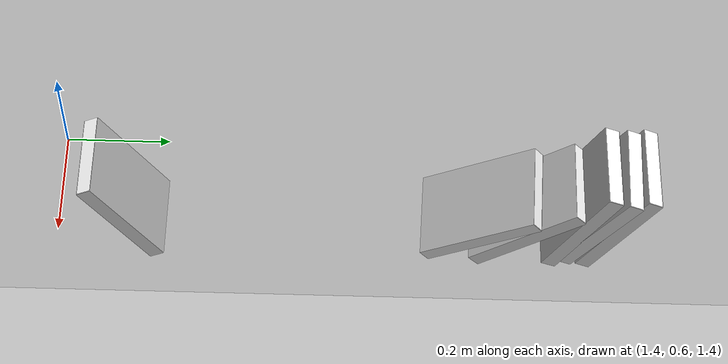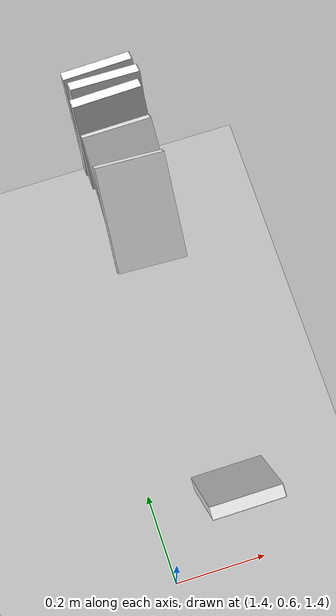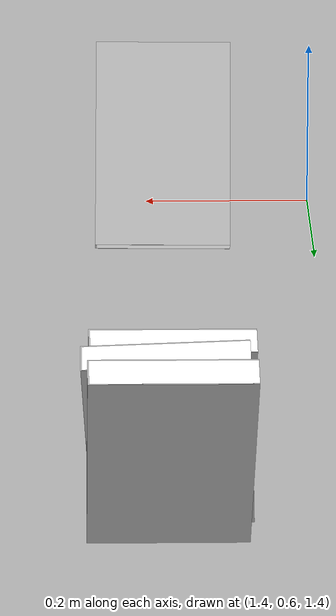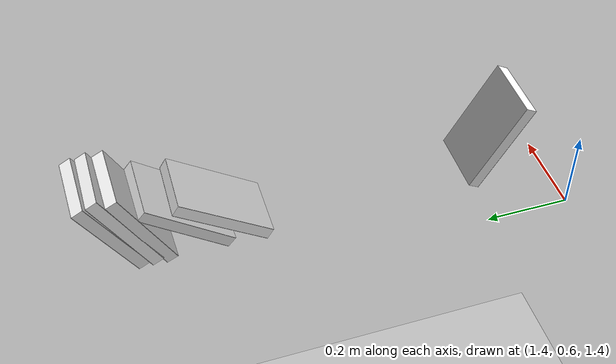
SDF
<sdf version="1.7">
 <world name="default">
  <model name="ground_plane">
   <static>1</static>
   <link name="link">
    <collision name="collision">
     <geometry><plane><normal>0 0 1</normal><size>100 100</size></plane></geometry>
     <surface><friction><ode><mu>1</mu><mu2>1</mu2></ode></friction></surface>
    </collision>
    <visual name="visual">
     <cast_shadows>0</cast_shadows>
     <geometry><plane><normal>0 0 1</normal><size>100 100</size></plane></geometry>
     <material>
      <script><uri>file://media/materials/scripts/gazebo.material</uri><name>Gazebo/Grey</name></script>
     </material>
    </visual>
    <velocity_decay><linear>0</linear><angular>0</angular></velocity_decay>
   </link>
  </model>
  <model name="book_1">
   <link name="cover">
    <pose>0 -0.000108 0.015405 0 -0 0</pose>
    <visual name="visual">
     <geometry><box><size>0.245 0.16 0.03</size></box></geometry>
     <material>
      <script>
       <uri>model://book_1/materials/scripts</uri>
       <uri>model://book_1/materials/textures</uri>
       <name>book_1</name>
      </script>
     </material>
    </visual>
    <collision name="collision"><geometry><box><size>0.245 0.16 0.03</size></box></geometry></collision>
   </link>
   <link name="page">
    <pose>0 0.000608 0.015405 0 -0 0</pose>
    <visual name="visual">
     <geometry><box><size>0.24502 0.15862 0.028</size></box></geometry>
     <material>
      <lighting>1</lighting>
      <ambient>1 1 1 1</ambient>
      <diffuse>1 1 1 1</diffuse>
      <specular>0.01 0.01 0.01 1</specular>
      <emissive>0 0 0 1</emissive>
      <shader type="vertex"><normal_map>__default__</normal_map></shader>
     </material>
    </visual>
    <collision name="collision"><geometry><box><size>0.245 0.16 0.03</size></box></geometry></collision>
   </link>
   <static>1</static>
   <pose>1.57892 1.63737 1.52769 -3.11882 1.07703 -1.53154</pose>
  </model>
  <model name="book_11">
   <link name="cover">
    <pose>0 -0.000108 0.015405 0 -0 0</pose>
    <visual name="visual">
     <geometry><box><size>0.245 0.16 0.03</size></box></geometry>
     <material>
      <script>
       <uri>model://book_11/materials/scripts</uri>
       <uri>model://book_11/materials/textures</uri>
       <name>book_11</name>
      </script>
     </material>
    </visual>
    <collision name="collision"><geometry><box><size>0.245 0.16 0.03</size></box></geometry></collision>
   </link>
   <link name="page">
    <pose>0 0.000608 0.015405 0 -0 0</pose>
    <visual name="visual">
     <geometry><box><size>0.24502 0.15862 0.028</size></box></geometry>
     <material>
      <lighting>1</lighting>
      <ambient>1 1 1 1</ambient>
      <diffuse>1 1 1 1</diffuse>
      <specular>0.01 0.01 0.01 1</specular>
      <emissive>0 0 0 1</emissive>
      <shader type="vertex"><normal_map>__default__</normal_map></shader>
     </material>
    </visual>
    <collision name="collision"><geometry><box><size>0.245 0.16 0.03</size></box></geometry></collision>
   </link>
   <static>1</static>
   <pose>1.57867 1.56994 1.52807 -3.11726 1.11114 -1.52978</pose>
  </model>
  <model name="book_12">
   <link name="cover">
    <pose>0 -0.000108 0.015405 0 -0 0</pose>
    <visual name="visual">
     <geometry><box><size>0.245 0.16 0.03</size></box></geometry>
     <material>
      <script>
       <uri>model://book_12/materials/scripts</uri>
       <uri>model://book_12/materials/textures</uri>
       <name>book_12</name>
      </script>
     </material>
    </visual>
    <collision name="collision"><geometry><box><size>0.245 0.16 0.03</size></box></geometry></collision>
   </link>
   <link name="page">
    <pose>0 0.000608 0.015405 0 -0 0</pose>
    <visual name="visual">
     <geometry><box><size>0.24502 0.15862 0.028</size></box></geometry>
     <material>
      <lighting>1</lighting>
      <ambient>1 1 1 1</ambient>
      <diffuse>1 1 1 1</diffuse>
      <specular>0.01 0.01 0.01 1</specular>
      <emissive>0 0 0 1</emissive>
      <shader type="vertex"><normal_map>__default__</normal_map></shader>
     </material>
    </visual>
    <collision name="collision"><geometry><box><size>0.245 0.16 0.03</size></box></geometry></collision>
   </link>
   <static>1</static>
   <pose>1.5784 1.39365 1.50223 3.07983 0.578016 -1.63068</pose>
  </model>
  <model name="book_17">
   <link name="cover">
    <pose>0 -0.000108 0.015405 0 -0 0</pose>
    <visual name="visual">
     <geometry><box><size>0.245 0.16 0.03</size></box></geometry>
     <material>
      <script>
       <uri>model://book_17/materials/scripts</uri>
       <uri>model://book_17/materials/textures</uri>
       <name>book_17</name>
      </script>
     </material>
    </visual>
    <collision name="collision"><geometry><box><size>0.245 0.16 0.03</size></box></geometry></collision>
   </link>
   <link name="page">
    <pose>0 0.000608 0.015405 0 -0 0</pose>
    <visual name="visual">
     <geometry><box><size>0.24502 0.15862 0.028</size></box></geometry>
     <material>
      <lighting>1</lighting>
      <ambient>1 1 1 1</ambient>
      <diffuse>1 1 1 1</diffuse>
      <specular>0.01 0.01 0.01 1</specular>
      <emissive>0 0 0 1</emissive>
      <shader type="vertex"><normal_map>__default__</normal_map></shader>
     </material>
    </visual>
    <collision name="collision"><geometry><box><size>0.245 0.16 0.03</size></box></geometry></collision>
   </link>
   <static>1</static>
   <pose>1.58009 1.60475 1.53124 3.06968 1.07706 -1.63479</pose>
  </model>
  <model name="book_18">
   <link name="cover">
    <pose>0 -0.000108 0.015405 0 -0 0</pose>
    <visual name="visual">
     <geometry><box><size>0.245 0.16 0.03</size></box></geometry>
     <material>
      <script>
       <uri>model://book_18/materials/scripts</uri>
       <uri>model://book_18/materials/textures</uri>
       <name>book_18</name>
      </script>
     </material>
    </visual>
    <collision name="collision"><geometry><box><size>0.245 0.16 0.03</size></box></geometry></collision>
   </link>
   <link name="page">
    <pose>0 0.000608 0.015405 0 -0 0</pose>
    <visual name="visual">
     <geometry><box><size>0.24502 0.15862 0.028</size></box></geometry>
     <material>
      <lighting>1</lighting>
      <ambient>1 1 1 1</ambient>
      <diffuse>1 1 1 1</diffuse>
      <specular>0.01 0.01 0.01 1</specular>
      <emissive>0 0 0 1</emissive>
      <shader type="vertex"><normal_map>__default__</normal_map></shader>
     </material>
    </visual>
    <collision name="collision"><geometry><box><size>0.245 0.16 0.03</size></box></geometry></collision>
   </link>
   <static>1</static>
   <pose>1.5794 0.721517 1.51174 -0.022284 1.06499 1.55051</pose>
  </model>
  <model name="book_2">
   <link name="cover">
    <pose>0 -0.000108 0.015405 0 -0 0</pose>
    <visual name="visual">
     <geometry><box><size>0.245 0.16 0.03</size></box></geometry>
     <material>
      <script>
       <uri>model://book_2/materials/scripts</uri>
       <uri>model://book_2/materials/textures</uri>
       <name>book_2</name>
      </script>
     </material>
    </visual>
    <collision name="collision"><geometry><box><size>0.245 0.16 0.03</size></box></geometry></collision>
   </link>
   <link name="page">
    <pose>0 0.000608 0.015405 0 -0 0</pose>
    <visual name="visual">
     <geometry><box><size>0.24502 0.15862 0.028</size></box></geometry>
     <material>
      <lighting>1</lighting>
      <ambient>1 1 1 1</ambient>
      <diffuse>1 1 1 1</diffuse>
      <specular>0.01 0.01 0.01 1</specular>
      <emissive>0 0 0 1</emissive>
      <shader type="vertex"><normal_map>__default__</normal_map></shader>
     </material>
    </visual>
    <collision name="collision"><geometry><box><size>0.245 0.16 0.03</size></box></geometry></collision>
   </link>
   <static>1</static>
   <pose>1.58038 1.4756 1.50855 -3.12301 0.677539 -1.55887</pose>
  </model>
  <model name="Floor_room">
   <link name="main">
    <pose>0 0 0.01 0 -0 0</pose>
    <collision name="main_Collision"><geometry><box><size>20 20 0.001</size></box></geometry></collision>
    <visual name="main_Visual">
     <geometry><box><size>20 20 0.001</size></box></geometry>
     <material>
      <script>
       <uri>model://Floor_room/materials/scripts</uri>
       <uri>model://Floor_room/materials/textures</uri>
       <name>floor_room</name>
      </script>
     </material>
    </visual>
   </link>
   <static>1</static>
   <pose>-0.0718 -0.016894 0.012233 0 -0 0</pose>
  </model>
 </world>
</sdf>
